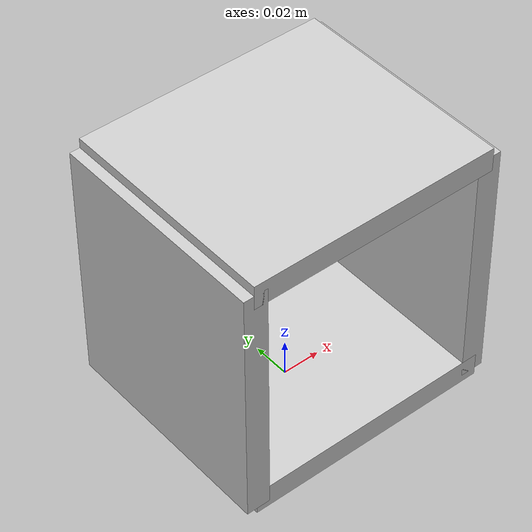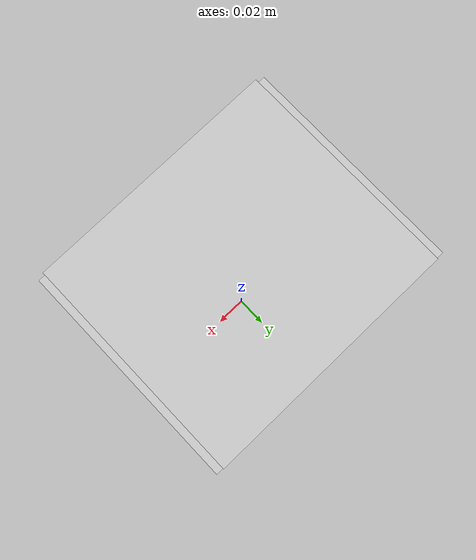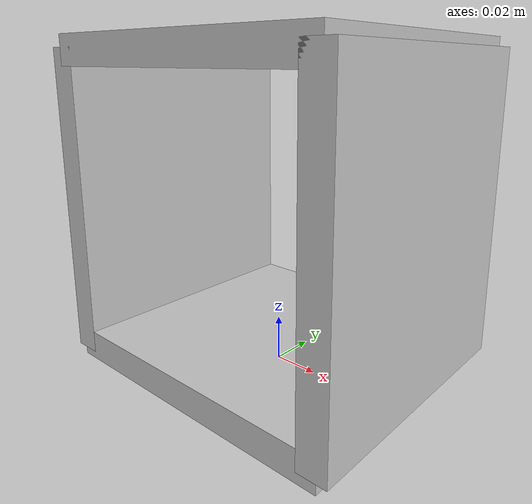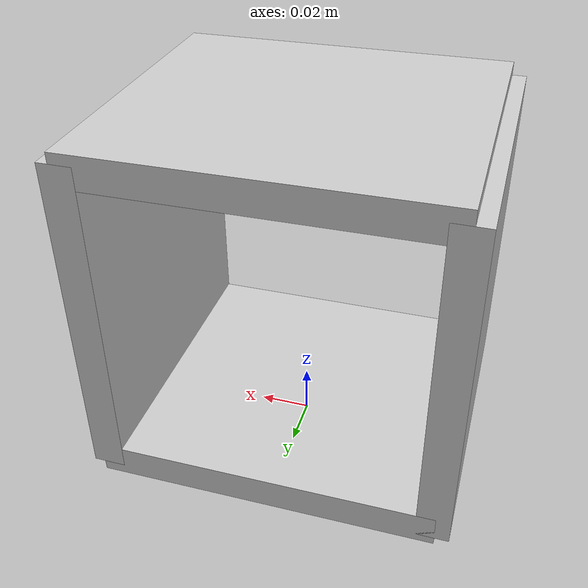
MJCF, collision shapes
<mujoco model="white_storage_box">
  <asset>
  <texture file="martin_novak_wood_table.png" name="tex-white_storage_box" type="2d" />
  <material name="white_storage_box" reflectance="0.5" texrepeat="1 1" texture="tex-white_storage_box" texuniform="false" />
  <mesh file="visual/box_vis.msh" name="white_storage_box_vis" scale="0.01 0.01 0.01" /></asset>
  <worldbody>
    <body>
      <body name="object">
    <site type="box" pos="0.00000 -0.00000 0.14250" quat="1 0 0 0" size="0.06425 0.05826 0.00122" group="0" rgba="0.8 0.8 0.0 0" name="top_side"/>
      <site type="box" pos="0.00000 0.00000 0.00468" quat="1 0 0 0" size="0.06425 0.05826 0.00216" group="0" rgba="0.8 0.8 0.0 0" name="bottom_side"/>
      <site type="box" pos="0.06799 0.00000 0.07174" quat="1.00000 -0.00000 0.00123 -0.00000" size="0.00216 0.05826 0.06425" group="0" rgba="0.8 0.8 0.0 0" name="right_side"/>
      <site type="box" pos="-0.06723 0.00000 0.07174" quat="1.00000 -0.00000 0.00123 -0.00000" size="0.00216 0.05826 0.06425" group="0" rgba="0.8 0.8 0.0 0" name="left_side"/>
      <geom solimp="0.998 0.998 0.001" solref="0.001 1" density="100" friction="0.95 0.3 0.1" type="mesh" mesh="white_storage_box_vis" conaffinity="0" contype="0" group="1" material="white_storage_box" />
      <geom solimp="0.998 0.998 0.001" solref="0.001 1" density="100" friction="0.95 0.3 0.1" type="box" pos="0.06420 -0.00000 0.07137" quat="0.00000 0.00000 1.00000 0.00000" size="0.00629 0.05830 0.06550" group="0" rgba="0.8 0.8 0.8 0.3" />
      <geom solimp="0.998 0.998 0.001" solref="0.001 1" density="100" friction="0.95 0.3 0.1" type="box" pos="0.00072 0.00000 0.13522" quat="0.70429 -0.00000 0.70991 0.00000" size="0.00629 0.05830 0.06550" group="0" rgba="0.8 0.8 0.8 0.3" />
      <geom solimp="0.998 0.998 0.001" solref="0.001 1" density="100" friction="0.95 0.3 0.1" type="box" pos="0.00072 -0.00000 0.00864" quat="0.70429 -0.00000 0.70991 -0.00000" size="0.00629 0.05830 0.06550" group="0" rgba="0.8 0.8 0.8 0.3" />
      <geom solimp="0.998 0.998 0.001" solref="0.001 1" density="100" friction="0.95 0.3 0.1" type="box" pos="-0.06392 0.00000 0.07137" quat="0.00000 0.00000 1.00000 0.00000" size="0.00629 0.05830 0.06550" group="0" rgba="0.8 0.8 0.8 0.3" />
      </body>
      <site rgba="0 0 0 0" size="0.005" pos="0 0 -0.06" name="bottom_site" />
      <site rgba="0 0 0 0" size="0.005" pos="0 0 0.04" name="top_site" />
      <site rgba="0 0 0 0" size="0.005" pos="0.025 0.025 0" name="horizontal_radius_site" />
    </body>
  </worldbody>
</mujoco>
